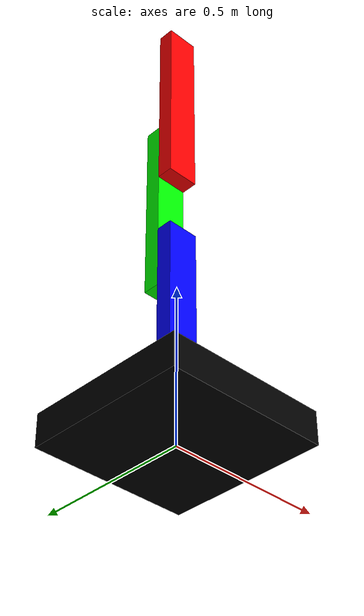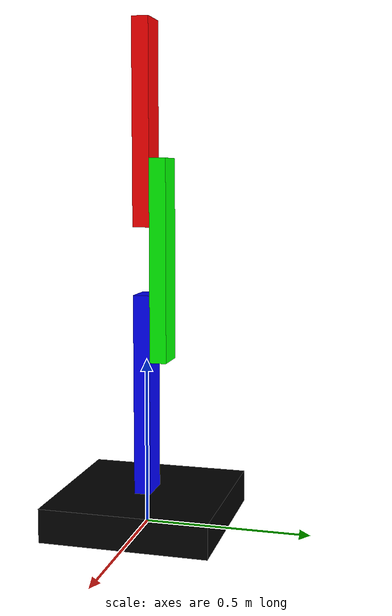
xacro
<?xml version="1.0"?>

<robot xmlns:xacro="https://www.ros.org/wiki/xacro" name="exarm">

    <!-- VARIABLES -->
    <xacro:property name="base_side_length" value="0.5" />
    <xacro:property name="base_side_height" value="0.1" />
    <xacro:property name="arm_link_x" value="0.1" />
    <xacro:property name="arm_link_y" value="0.05" />
    <xacro:property name="arm_link_z" value="0.6" />
    <xacro:property name="arm_joint_offset" value="0.1" />

    <!-- MATERIALS -->
    <material name="red">
        <color rgba="1 0 0 1" />
    </material>

    <material name="green">
        <color rgba="0 1 0 1" />
    </material>

    <material name="blue">
        <color rgba="0 0 1 1" />
    </material>

    <material name="black">
        <color rgba="0 0 0 1" />
    </material>

    <!-- ARM LINK MACRO -->
    <xacro:macro name="create_arm_link" params="name color">
        <link name="${name}">
            <visual>
                <origin xyz="0 0 ${arm_link_z/2 - arm_joint_offset}" rpy="0 0 0"/>
                <geometry>
                    <box size="${arm_link_x} ${arm_link_y} ${arm_link_z}" />
                </geometry>
                <material name="${color}" />
            </visual>
        </link>
    </xacro:macro>

    <!-- LINKS -->

    <link name="base_link" />

    <link name="link_0">
        <visual>
            <geometry>
                <box size="${base_side_length} ${base_side_length} ${base_side_height}" />
            </geometry>
            <origin xyz="0 0 0" rpy="0 0 0" />
            <material name="black" />
        </visual>
    </link>

    <xacro:create_arm_link name="link_1" color="blue" />
    <xacro:create_arm_link name="link_2" color="green" />
    <xacro:create_arm_link name="link_3" color="red" />

    <!-- JOINTS -->

    <joint name="joint_0" type="fixed" >
        <parent link="base_link" />
        <child link="link_0" />
        <origin xyz="0 0 ${base_side_height/2}" rpy="0 0 0" />
    </joint>

    <joint name="joint_1" type="revolute">
        <parent link="link_0" />
        <child link="link_1" />
        <origin xyz="0 0 ${base_side_height/2 + arm_joint_offset}" rpy="0 0 0" />
        <axis xyz="0 0 1" />
        <limit lower="-3.1415" upper="3.1415" effort="40" velocity="2.0"/>
    </joint>

    <joint name="joint_2" type="revolute">
        <parent link="link_1" />
        <child link="link_2" />
        <origin xyz="0 ${arm_link_y} ${arm_link_z - 2*arm_joint_offset}" rpy="0 0 0" />
        <axis xyz="0 1 0" />
        <limit lower="-2.0" upper="2.0" effort="40" velocity="2.0"/>
    </joint>

    <joint name="joint_3" type="revolute">
        <parent link="link_2" />
        <child link="link_3" />
        <origin xyz="0 ${-arm_link_y} ${arm_link_z - 2*arm_joint_offset}" rpy="0 0 0" />
        <axis xyz="0 1 0" />
        <limit lower="-2.0" upper="2.0" effort="40" velocity="2.0"/>
    </joint>

</robot>
